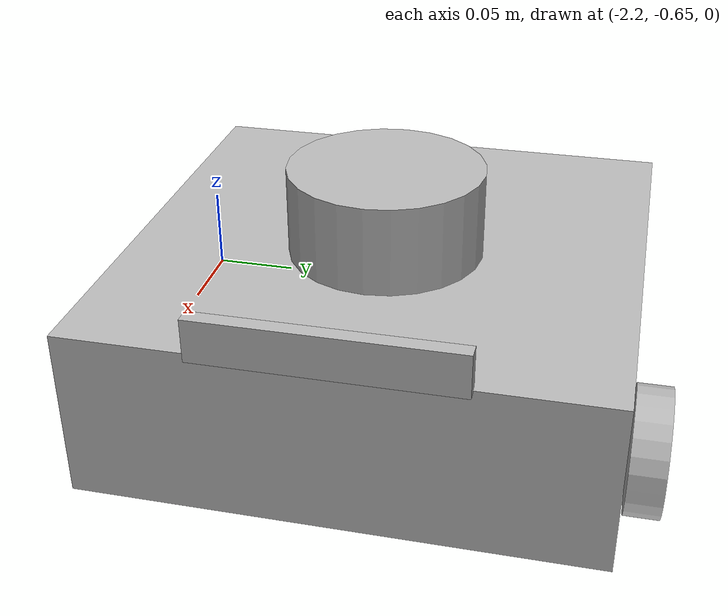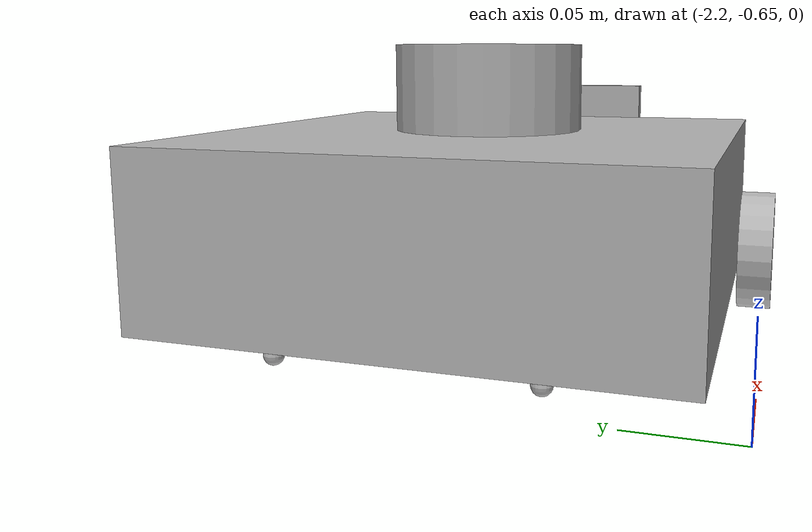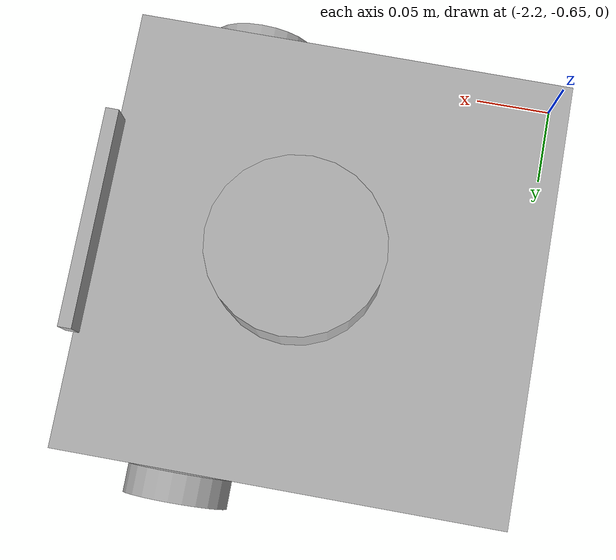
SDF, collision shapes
<?xml version="1.0"?>
<sdf version="1.7">
  <model name='turtlebot3_waffle'>
    <pose>-2 -0.5 0.01 0 -0 0</pose>
    <link name='base_footprint'>
      <self_collide>0</self_collide>
      <inertial>
        <pose>0 0 0 0 -0 0</pose>
        <inertia>
          <ixx>1</ixx>
          <ixy>0</ixy>
          <ixz>0</ixz>
          <iyy>1</iyy>
          <iyz>0</iyz>
          <izz>1</izz>
        </inertia>
        <mass>1</mass>
      </inertial>
      <enable_wind>0</enable_wind>
      <kinematic>0</kinematic>
    </link>
    <link name='base_link'>
      <inertial>
        <pose>-0.064 0 0.048 0 -0 0</pose>
        <inertia>
          <ixx>0.001</ixx>
          <ixy>0</ixy>
          <ixz>0</ixz>
          <iyy>0.001</iyy>
          <iyz>0</iyz>
          <izz>0.001</izz>
        </inertia>
        <mass>1</mass>
      </inertial>
      <collision name='base_collision'>
        <pose>-0.064 0 0.048 0 -0 0</pose>
        <geometry>
          <box>
            <size>0.265 0.265 0.089</size>
          </box>
        </geometry>
        <surface>
          <contact>
            <ode />
          </contact>
          <bounce />
          <friction>
            <torsional>
              <ode />
            </torsional>
            <ode />
          </friction>
        </surface>
        <max_contacts>10</max_contacts>
      </collision>
      <visual name='base_visual'>
        <pose>-0.064 0 0 0 -0 0</pose>
        <geometry>
          <mesh>
            <uri>model://turtlebot3_waffle/meshes/waffle_base.dae</uri>
            <scale>0.001 0.001 0.001</scale>
          </mesh>
        </geometry>
      </visual>
      <self_collide>0</self_collide>
      <enable_wind>0</enable_wind>
      <kinematic>0</kinematic>
    </link>
    <link name='imu_link'>
      <sensor name='tb3_imu' type='imu'>
        <always_on>1</always_on>
        <update_rate>200</update_rate>
        <imu>
          <angular_velocity>
            <x>
              <noise type='gaussian'>
                <mean>0</mean>
                <stddev>0.0002</stddev>
              </noise>
            </x>
            <y>
              <noise type='gaussian'>
                <mean>0</mean>
                <stddev>0.0002</stddev>
              </noise>
            </y>
            <z>
              <noise type='gaussian'>
                <mean>0</mean>
                <stddev>0.0002</stddev>
              </noise>
            </z>
          </angular_velocity>
          <linear_acceleration>
            <x>
              <noise type='gaussian'>
                <mean>0</mean>
                <stddev>0.017</stddev>
              </noise>
            </x>
            <y>
              <noise type='gaussian'>
                <mean>0</mean>
                <stddev>0.017</stddev>
              </noise>
            </y>
            <z>
              <noise type='gaussian'>
                <mean>0</mean>
                <stddev>0.017</stddev>
              </noise>
            </z>
          </linear_acceleration>
        </imu>
        <plugin name='turtlebot3_imu' filename='libgazebo_ros_imu_sensor.so'>
          <ros>
            <remapping>~/out:=imu</remapping>
          </ros>
        </plugin>
      </sensor>
      <self_collide>0</self_collide>
      <inertial>
        <pose>0 0 0 0 -0 0</pose>
        <inertia>
          <ixx>1</ixx>
          <ixy>0</ixy>
          <ixz>0</ixz>
          <iyy>1</iyy>
          <iyz>0</iyz>
          <izz>1</izz>
        </inertia>
        <mass>1</mass>
      </inertial>
      <enable_wind>0</enable_wind>
      <kinematic>0</kinematic>
    </link>
    <link name='base_scan'>
      <inertial>
        <pose>-0.052 0 0.111 0 -0 0</pose>
        <inertia>
          <ixx>0.001</ixx>
          <ixy>0</ixy>
          <ixz>0</ixz>
          <iyy>0.001</iyy>
          <iyz>0</iyz>
          <izz>0.001</izz>
        </inertia>
        <mass>0.125</mass>
      </inertial>
      <collision name='lidar_sensor_collision'>
        <pose>-0.052 0 0.111 0 -0 0</pose>
        <geometry>
          <cylinder>
            <radius>0.0508</radius>
            <length>0.055</length>
          </cylinder>
        </geometry>
        <surface>
          <contact>
            <ode />
          </contact>
          <bounce />
          <friction>
            <torsional>
              <ode />
            </torsional>
            <ode />
          </friction>
        </surface>
        <max_contacts>10</max_contacts>
      </collision>
      <visual name='lidar_sensor_visual'>
        <pose>-0.064 0 0.121 0 -0 0</pose>
        <geometry>
          <mesh>
            <uri>model://turtlebot3_waffle/meshes/lds.dae</uri>
            <scale>0.001 0.001 0.001</scale>
          </mesh>
        </geometry>
      </visual>
      <sensor name='hls_lfcd_lds' type='ray'>
        <always_on>1</always_on>
        <visualize>0</visualize>
        <pose>-0.064 0 0.121 0 -0 0</pose>
        <update_rate>5</update_rate>
        <ray>
          <scan>
            <horizontal>
              <samples>360</samples>
              <resolution>1</resolution>
              <min_angle>0</min_angle>
              <max_angle>6.28</max_angle>
            </horizontal>
            <vertical>
              <samples>1</samples>
              <min_angle>0</min_angle>
              <max_angle>0</max_angle>
            </vertical>
          </scan>
          <range>
            <min>0.32</min>
            <max>20.5</max>
            <resolution>0.015</resolution>
          </range>
          <noise>
            <type>gaussian</type>
            <mean>0</mean>
            <stddev>0.01</stddev>
          </noise>
        </ray>
        <plugin name='turtlebot3_laserscan' filename='libgazebo_ros_ray_sensor.so'>
          <ros>
            <remapping>~/out:=scan</remapping>
          </ros>
          <output_type>sensor_msgs/LaserScan</output_type>
          <frame_name>base_scan</frame_name>
        </plugin>
      </sensor>
      <self_collide>0</self_collide>
      <enable_wind>0</enable_wind>
      <kinematic>0</kinematic>
    </link>
    <link name='wheel_left_link'>
      <inertial>
        <pose>0 0.144 0.023 -1.57 0 0</pose>
        <inertia>
          <ixx>0.001</ixx>
          <ixy>0</ixy>
          <ixz>0</ixz>
          <iyy>0.001</iyy>
          <iyz>0</iyz>
          <izz>0.001</izz>
        </inertia>
        <mass>0.1</mass>
      </inertial>
      <collision name='wheel_left_collision'>
        <pose>0 0.144 0.023 -1.57 0 0</pose>
        <geometry>
          <cylinder>
            <radius>0.033</radius>
            <length>0.018</length>
          </cylinder>
        </geometry>
        <surface>
          <friction>
            <ode>
              <mu>100000</mu>
              <mu2>100000</mu2>
              <fdir1>0 0 0</fdir1>
              <slip1>0</slip1>
              <slip2>0</slip2>
            </ode>
            <torsional>
              <ode />
            </torsional>
          </friction>
          <contact>
            <ode>
              <soft_cfm>0</soft_cfm>
              <soft_erp>0.2</soft_erp>
              <kp>100000</kp>
              <kd>1</kd>
              <max_vel>0.01</max_vel>
              <min_depth>0.001</min_depth>
            </ode>
          </contact>
          <bounce />
        </surface>
        <max_contacts>10</max_contacts>
      </collision>
      <visual name='wheel_left_visual'>
        <pose>0 0.144 0.023 0 -0 0</pose>
        <geometry>
          <mesh>
            <uri>model://turtlebot3_waffle/meshes/left_tire.dae</uri>
            <scale>0.001 0.001 0.001</scale>
          </mesh>
        </geometry>
      </visual>
      <self_collide>0</self_collide>
      <enable_wind>0</enable_wind>
      <kinematic>0</kinematic>
    </link>
    <link name='wheel_right_link'>
      <inertial>
        <pose>0 -0.144 0.023 -1.57 0 0</pose>
        <inertia>
          <ixx>0.001</ixx>
          <ixy>0</ixy>
          <ixz>0</ixz>
          <iyy>0.001</iyy>
          <iyz>0</iyz>
          <izz>0.001</izz>
        </inertia>
        <mass>0.1</mass>
      </inertial>
      <collision name='wheel_right_collision'>
        <pose>0 -0.144 0.023 -1.57 0 0</pose>
        <geometry>
          <cylinder>
            <radius>0.033</radius>
            <length>0.018</length>
          </cylinder>
        </geometry>
        <surface>
          <friction>
            <ode>
              <mu>100000</mu>
              <mu2>100000</mu2>
              <fdir1>0 0 0</fdir1>
              <slip1>0</slip1>
              <slip2>0</slip2>
            </ode>
            <torsional>
              <ode />
            </torsional>
          </friction>
          <contact>
            <ode>
              <soft_cfm>0</soft_cfm>
              <soft_erp>0.2</soft_erp>
              <kp>100000</kp>
              <kd>1</kd>
              <max_vel>0.01</max_vel>
              <min_depth>0.001</min_depth>
            </ode>
          </contact>
          <bounce />
        </surface>
        <max_contacts>10</max_contacts>
      </collision>
      <visual name='wheel_right_visual'>
        <pose>0 -0.144 0.023 0 -0 0</pose>
        <geometry>
          <mesh>
            <uri>model://turtlebot3_waffle/meshes/right_tire.dae</uri>
            <scale>0.001 0.001 0.001</scale>
          </mesh>
        </geometry>
      </visual>
      <self_collide>0</self_collide>
      <enable_wind>0</enable_wind>
      <kinematic>0</kinematic>
    </link>
    <link name='caster_back_right_link'>
      <pose>-0.177 -0.064 -0.004 0 -0 0</pose>
      <inertial>
        <mass>0.001</mass>
        <inertia>
          <ixx>1e-05</ixx>
          <ixy>0</ixy>
          <ixz>0</ixz>
          <iyy>1e-05</iyy>
          <iyz>0</iyz>
          <izz>1e-05</izz>
        </inertia>
        <pose>0 0 0 0 -0 0</pose>
      </inertial>
      <collision name='collision'>
        <geometry>
          <sphere>
            <radius>0.005</radius>
          </sphere>
        </geometry>
        <surface>
          <contact>
            <ode>
              <soft_cfm>0</soft_cfm>
              <soft_erp>0.2</soft_erp>
              <kp>100000</kp>
              <kd>1</kd>
              <max_vel>0.01</max_vel>
              <min_depth>0.001</min_depth>
            </ode>
          </contact>
          <bounce />
          <friction>
            <torsional>
              <ode />
            </torsional>
            <ode />
          </friction>
        </surface>
        <max_contacts>10</max_contacts>
      </collision>
      <self_collide>0</self_collide>
      <enable_wind>0</enable_wind>
      <kinematic>0</kinematic>
    </link>
    <link name='caster_back_left_link'>
      <pose>-0.177 0.064 -0.004 0 -0 0</pose>
      <inertial>
        <mass>0.001</mass>
        <inertia>
          <ixx>1e-05</ixx>
          <ixy>0</ixy>
          <ixz>0</ixz>
          <iyy>1e-05</iyy>
          <iyz>0</iyz>
          <izz>1e-05</izz>
        </inertia>
        <pose>0 0 0 0 -0 0</pose>
      </inertial>
      <collision name='collision'>
        <geometry>
          <sphere>
            <radius>0.005</radius>
          </sphere>
        </geometry>
        <surface>
          <contact>
            <ode>
              <soft_cfm>0</soft_cfm>
              <soft_erp>0.2</soft_erp>
              <kp>100000</kp>
              <kd>1</kd>
              <max_vel>0.01</max_vel>
              <min_depth>0.001</min_depth>
            </ode>
          </contact>
          <bounce />
          <friction>
            <torsional>
              <ode />
            </torsional>
            <ode />
          </friction>
        </surface>
        <max_contacts>10</max_contacts>
      </collision>
      <self_collide>0</self_collide>
      <enable_wind>0</enable_wind>
      <kinematic>0</kinematic>
    </link>
    <link name='camera_link'>
      <inertial>
        <pose>0.069 -0.047 0.107 0 -0 0</pose>
        <inertia>
          <ixx>0.001</ixx>
          <ixy>0</ixy>
          <ixz>0</ixz>
          <iyy>0.001</iyy>
          <iyz>0</iyz>
          <izz>0.001</izz>
        </inertia>
        <mass>0.035</mass>
      </inertial>
      <collision name='collision'>
        <pose>0 0.047 -0.005 0 -0 0</pose>
        <geometry>
          <box>
            <size>0.008 0.13 0.022</size>
          </box>
        </geometry>
        <surface>
          <contact>
            <ode />
          </contact>
          <bounce />
          <friction>
            <torsional>
              <ode />
            </torsional>
            <ode />
          </friction>
        </surface>
        <max_contacts>10</max_contacts>
      </collision>
      <pose>0.069 -0.047 0.107 0 -0 0</pose>
      <sensor name='intel_realsense_r200_depth' type='depth'>
        <always_on>1</always_on>
        <update_rate>5</update_rate>
        <pose>0.064 -0.047 0.107 0 -0 0</pose>
        <camera name='realsense_depth_camera'>
          <horizontal_fov>1.047</horizontal_fov>
          <image>
            <width>320</width>
            <height>240</height>
          </image>
          <clip>
            <near>0.1</near>
            <far>100</far>
          </clip>
        </camera>
        <plugin name='intel_realsense_r200_depth_driver' filename='libgazebo_ros_camera.so'>
          <ros />
          <camera_name>intel_realsense_r200_depth</camera_name>
          <frame_name>camera_depth_frame</frame_name>
          <hack_baseline>0.07</hack_baseline>
          <min_depth>0.001</min_depth>
          <max_depth>5.0</max_depth>
        </plugin>
      </sensor>
      <collision name='collision'>
        <pose>0 0.047 -0.005 0 -0 0</pose>
        <geometry>
          <box>
            <size>0.008 0.13 0.022</size>
          </box>
        </geometry>
        <surface>
          <contact>
            <ode />
          </contact>
          <bounce />
          <friction>
            <torsional>
              <ode />
            </torsional>
            <ode />
          </friction>
        </surface>
        <max_contacts>10</max_contacts>
      </collision>
      <pose>0.069 -0.047 0.107 0 -0 0</pose>
      <self_collide>0</self_collide>
      <enable_wind>0</enable_wind>
      <kinematic>0</kinematic>
    </link>
    <joint name='base_joint' type='fixed'>
      <parent>base_footprint</parent>
      <child>base_link</child>
      <pose>0 0 0.01 0 -0 0</pose>
    </joint>
    <joint name='wheel_left_joint' type='revolute'>
      <parent>base_link</parent>
      <child>wheel_left_link</child>
      <pose>0 0.144 0.023 -1.57 0 0</pose>
      <axis>
        <xyz>0 0 1</xyz>
        <limit>
          <lower>-1e+16</lower>
          <upper>1e+16</upper>
        </limit>
        <dynamics>
          <spring_reference>0</spring_reference>
          <spring_stiffness>0</spring_stiffness>
        </dynamics>
      </axis>
    </joint>
    <joint name='wheel_right_joint' type='revolute'>
      <parent>base_link</parent>
      <child>wheel_right_link</child>
      <pose>0 -0.144 0.023 -1.57 0 0</pose>
      <axis>
        <xyz>0 0 1</xyz>
        <limit>
          <lower>-1e+16</lower>
          <upper>1e+16</upper>
        </limit>
        <dynamics>
          <spring_reference>0</spring_reference>
          <spring_stiffness>0</spring_stiffness>
        </dynamics>
      </axis>
    </joint>
    <joint name='caster_back_right_joint' type='ball'>
      <parent>base_link</parent>
      <child>caster_back_right_link</child>
    </joint>
    <joint name='caster_back_left_joint' type='ball'>
      <parent>base_link</parent>
      <child>caster_back_left_link</child>
    </joint>
    <joint name='lidar_joint' type='fixed'>
      <parent>base_link</parent>
      <child>base_scan</child>
      <pose>-0.064 0 0.121 0 -0 0</pose>
      <axis>
        <xyz>0 0 1</xyz>
        <limit>
          <lower>-1e+16</lower>
          <upper>1e+16</upper>
        </limit>
      </axis>
    </joint>
    <joint name='camera_joint' type='fixed'>
      <parent>base_link</parent>
      <child>camera_link</child>
      <pose>0.064 -0.065 0.094 0 -0 0</pose>
      <axis>
        <xyz>0 0 1</xyz>
        <limit>
          <lower>-1e+16</lower>
          <upper>1e+16</upper>
        </limit>
      </axis>
    </joint>
    <joint name='camera_rgb_joint' type='fixed'>
      <parent>camera_link</parent>
      <child>camera_rgb_frame</child>
      <pose>0.005 0.018 0.013 0 -0 0</pose>
      <axis>
        <xyz>0 0 1</xyz>
        <limit>
          <lower>-1e+16</lower>
          <upper>1e+16</upper>
        </limit>
      </axis>
    </joint>
    <plugin name='turtlebot3_diff_drive' filename='libgazebo_ros_diff_drive.so'>
      <ros />
      <update_rate>30</update_rate>
      <left_joint>wheel_left_joint</left_joint>
      <right_joint>wheel_right_joint</right_joint>
      <wheel_separation>0.287</wheel_separation>
      <wheel_diameter>0.066</wheel_diameter>
      <max_wheel_torque>20</max_wheel_torque>
      <max_wheel_acceleration>1.0</max_wheel_acceleration>
      <command_topic>cmd_vel</command_topic>
      <publish_odom>1</publish_odom>
      <publish_odom_tf>1</publish_odom_tf>
      <publish_wheel_tf>0</publish_wheel_tf>
      <odometry_topic>odom</odometry_topic>
      <odometry_frame>odom</odometry_frame>
      <robot_base_frame>base_footprint</robot_base_frame>
    </plugin>
    <plugin name='turtlebot3_joint_state' filename='libgazebo_ros_joint_state_publisher.so'>
      <ros>
        <remapping>~/out:=joint_states</remapping>
      </ros>
      <update_rate>30</update_rate>
      <joint_name>wheel_left_joint</joint_name>
      <joint_name>wheel_right_joint</joint_name>
    </plugin>

    <pose>-1.99992 -0.499987 0.008722 -1.1e-05 0.001564 0.007895</pose>
    <scale>1 1 1</scale>
    <link name='base_footprint'>
      <pose>-1.99992 -0.499987 0.008722 -1.1e-05 0.001564 0.007895</pose>
      <velocity>4.7e-05 -0.000497 -0.040079 -0.000146 0.001825 -0.000317</velocity>
      <acceleration>0.015015 -0.034383 -0.183632 0.142169 -0.234337 -0.004801</acceleration>
      <wrench>0.015015 -0.034383 -0.183632 0 -0 0</wrench>
    </link>
    <link name='base_link'>
      <pose>-1.99992 -0.499985 0.008722 -9e-06 0.001564 0.007898</pose>
      <velocity>0.000262 -0.000809 -0.039759 -0.001017 0.000608 -0.00065</velocity>
      <acceleration>0.140542 -0.126014 0.015921 -0.394499 -1.32727 0.002612</acceleration>
      <wrench>0.140542 -0.126014 0.015921 0 -0 0</wrench>
    </link>
    <link name='base_scan'>
      <pose>-1.99992 -0.499985 0.008722 -1.2e-05 0.001563 0.007901</pose>
      <velocity>0.000255 -0.000846 -0.039778 -0.000589 0.000798 -0.001039</velocity>
      <acceleration>0.054436 -0.100857 0.024621 -0.407769 -1.3636 -0.000906</acceleration>
      <wrench>0.006804 -0.012607 0.003078 0 -0 0</wrench>
    </link>
    <link name='camera_link'>
      <pose>-1.93039 -0.546436 0.115615 -1e-05 0.001563 0.0079</pose>
      <velocity>0.000288 -0.000877 -0.039826 -0.000845 0.000676 -0.000846</velocity>
      <acceleration>-0.088096 -0.058923 0.32354 -0.404016 -1.35469 0.001185</acceleration>
      <wrench>-0.003083 -0.002062 0.011324 0 -0 0</wrench>
    </link>
    <link name='caster_back_left_link'>
      <pose>-2.17743 -0.437385 0.004997 2.46667 0.40724 1.08802</pose>
      <velocity>0.000317 -0.000433 -0.0164 0.085597 0.062951 0</velocity>
      <acceleration>-0.002623 0.273187 22.8246 1.23316 -0.703068 0</acceleration>
      <wrench>-3e-06 0.000273 0.022825 0 -0 0</wrench>
    </link>
    <link name='caster_back_right_link'>
      <pose>-2.17642 -0.56538 0.004998 -2.29564 -0.288706 0.609177</pose>
      <velocity>0.000327 -0.00085 -0.038942 0.113268 0.05141 0</velocity>
      <acceleration>-0.046155 0.027458 0.077654 0 -0 0</acceleration>
      <wrench>-4.6e-05 2.7e-05 7.8e-05 0 -0 0</wrench>
    </link>
    <link name='imu_link'>
      <pose>-2 -0.5 -43974.7 0 -0 0</pose>
      <velocity>0 0 -928.383 0 -0 0</velocity>
      <acceleration>0 0 -9.8 0 -0 0</acceleration>
      <wrench>0 0 -9.8 0 -0 0</wrench>
    </link>
    <link name='wheel_left_link'>
      <pose>-1.99919 -0.499984 0.008735 -3.1e-05 -0.030628 0.007851</pose>
      <velocity>0.000311 -4.3e-05 -0.040244 0.004673 0.004285 0.001885</velocity>
      <acceleration>0.08455 -0.064388 0.149323 -1.19056 0.580198 3.12932</acceleration>
      <wrench>0.008455 -0.006439 0.014932 0 -0 0</wrench>
    </link>
    <link name='wheel_right_link'>
      <pose>-2.00077 -0.499996 0.008737 -2.7e-05 0.038141 0.007913</pose>
      <velocity>-0.000133 -5.2e-05 -0.039656 0.004945 0.004781 0.001244</velocity>
      <acceleration>0.079134 -0.076051 -0.43328 -0.837183 0.744163 3.13292</acceleration>
      <wrench>0.007913 -0.007605 -0.043328 0 -0 0</wrench>
    </link>

  </model>
</sdf>
